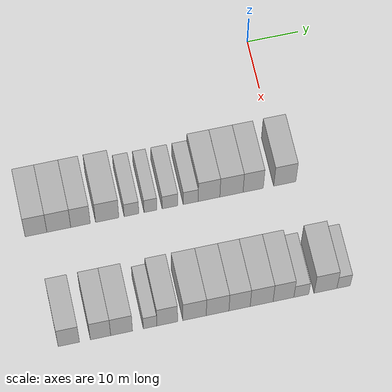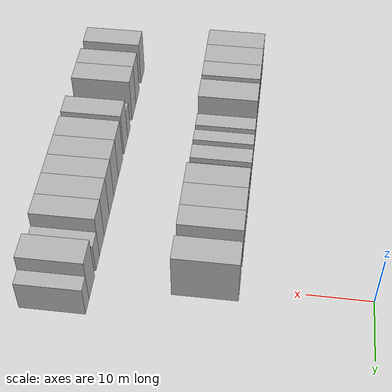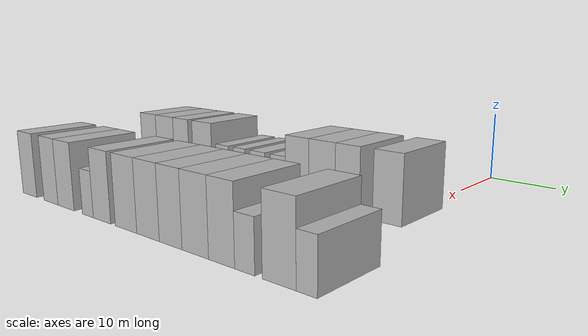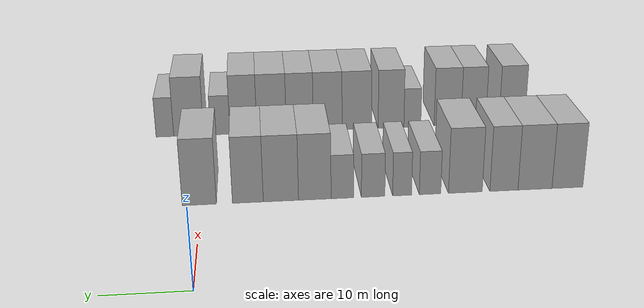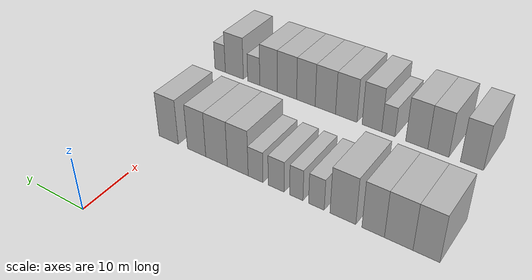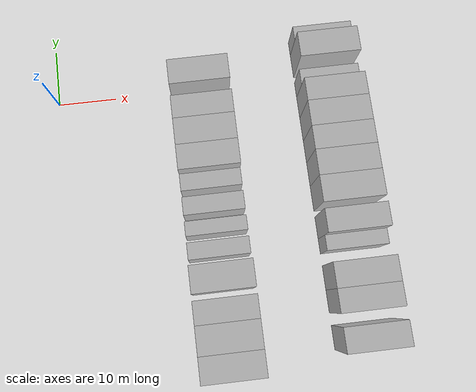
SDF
<sdf version="1.6">
 <world name="default">
  <model name="building_37">
   <static>1</static>
   <pose>25.0000 -46.9516 0 0.000000 0.000000 0.000000</pose>
   <link name="link">
    <pose>0 0 4.50 0 0 0</pose>
    <collision name="collision"><geometry><box><size>10.0000 4.0851 9.0000</size></box></geometry></collision>
    <visual name="visual">
     <cast_shadows>0</cast_shadows>
     <geometry><box><size>10.0000 4.0851 9.0000</size></box></geometry>
     <material>
      <script>
       <uri>model://HANNAS_wall/materials/scripts</uri>
       <uri>model://HANNAS_wall/materials/textures</uri>
       <name>vrc/HANNAS_wall</name>
      </script>
     </material>
    </visual>
   </link>
  </model>
  <model name="building_38">
   <static>1</static>
   <pose>25.0000 -42.6696 0 0.000000 0.000000 0.000000</pose>
   <link name="link">
    <pose>0 0 4.50 0 0 0</pose>
    <collision name="collision"><geometry><box><size>10.0000 4.4789 9.0000</size></box></geometry></collision>
    <visual name="visual">
     <cast_shadows>0</cast_shadows>
     <geometry><box><size>10.0000 4.4789 9.0000</size></box></geometry>
     <material>
      <script>
       <uri>model://HANNAS_wall/materials/scripts</uri>
       <uri>model://HANNAS_wall/materials/textures</uri>
       <name>vrc/HANNAS_wall</name>
      </script>
     </material>
    </visual>
   </link>
  </model>
  <model name="building_39">
   <static>1</static>
   <pose>25.0000 -38.5943 0 0.000000 0.000000 0.000000</pose>
   <link name="link">
    <pose>0 0 4.50 0 0 0</pose>
    <collision name="collision"><geometry><box><size>10.0000 3.6718 9.0000</size></box></geometry></collision>
    <visual name="visual">
     <cast_shadows>0</cast_shadows>
     <geometry><box><size>10.0000 3.6718 9.0000</size></box></geometry>
     <material>
      <script>
       <uri>model://HANNAS_wall/materials/scripts</uri>
       <uri>model://HANNAS_wall/materials/textures</uri>
       <name>vrc/HANNAS_wall</name>
      </script>
     </material>
    </visual>
   </link>
  </model>
  <model name="building_40">
   <static>1</static>
   <pose>25.0000 -33.5643 0 0.000000 0.000000 0.000000</pose>
   <link name="link">
    <pose>0 0 4.50 0 0 0</pose>
    <collision name="collision"><geometry><box><size>10.0000 4.3882 9.0000</size></box></geometry></collision>
    <visual name="visual">
     <cast_shadows>0</cast_shadows>
     <geometry><box><size>10.0000 4.3882 9.0000</size></box></geometry>
     <material>
      <script>
       <uri>model://HANNAS_wall/materials/scripts</uri>
       <uri>model://HANNAS_wall/materials/textures</uri>
       <name>vrc/HANNAS_wall</name>
      </script>
     </material>
    </visual>
   </link>
  </model>
  <model name="building_41">
   <static>1</static>
   <pose>25.0000 -28.9870 0 0.000000 0.000000 0.000000</pose>
   <link name="link">
    <pose>0 0 3.00 0 0 0</pose>
    <collision name="collision"><geometry><box><size>10.0000 2.7664 6.0000</size></box></geometry></collision>
    <visual name="visual">
     <cast_shadows>0</cast_shadows>
     <geometry><box><size>10.0000 2.7664 6.0000</size></box></geometry>
     <material>
      <script>
       <uri>model://HANNAS_wall/materials/scripts</uri>
       <uri>model://HANNAS_wall/materials/textures</uri>
       <name>vrc/HANNAS_wall</name>
      </script>
     </material>
    </visual>
   </link>
  </model>
  <model name="building_42">
   <static>1</static>
   <pose>25.0000 -25.3923 0 0.000000 0.000000 0.000000</pose>
   <link name="link">
    <pose>0 0 3.00 0 0 0</pose>
    <collision name="collision"><geometry><box><size>10.0000 2.4228 6.0000</size></box></geometry></collision>
    <visual name="visual">
     <cast_shadows>0</cast_shadows>
     <geometry><box><size>10.0000 2.4228 6.0000</size></box></geometry>
     <material>
      <script>
       <uri>model://HANNAS_wall/materials/scripts</uri>
       <uri>model://HANNAS_wall/materials/textures</uri>
       <name>vrc/HANNAS_wall</name>
      </script>
     </material>
    </visual>
   </link>
  </model>
  <model name="building_43">
   <static>1</static>
   <pose>25.0000 -21.6845 0 0.000000 0.000000 0.000000</pose>
   <link name="link">
    <pose>0 0 3.00 0 0 0</pose>
    <collision name="collision"><geometry><box><size>10.0000 2.9929 6.0000</size></box></geometry></collision>
    <visual name="visual">
     <cast_shadows>0</cast_shadows>
     <geometry><box><size>10.0000 2.9929 6.0000</size></box></geometry>
     <material>
      <script>
       <uri>model://HANNAS_wall/materials/scripts</uri>
       <uri>model://HANNAS_wall/materials/textures</uri>
       <name>vrc/HANNAS_wall</name>
      </script>
     </material>
    </visual>
   </link>
  </model>
  <model name="building_44">
   <static>1</static>
   <pose>25.0000 -17.7682 0 0.000000 0.000000 0.000000</pose>
   <link name="link">
    <pose>0 0 3.00 0 0 0</pose>
    <collision name="collision"><geometry><box><size>10.0000 2.8396 6.0000</size></box></geometry></collision>
    <visual name="visual">
     <cast_shadows>0</cast_shadows>
     <geometry><box><size>10.0000 2.8396 6.0000</size></box></geometry>
     <material>
      <script>
       <uri>model://HANNAS_wall/materials/scripts</uri>
       <uri>model://HANNAS_wall/materials/textures</uri>
       <name>vrc/HANNAS_wall</name>
      </script>
     </material>
    </visual>
   </link>
  </model>
  <model name="building_45">
   <static>1</static>
   <pose>25.0000 -14.2849 0 0.000000 0.000000 0.000000</pose>
   <link name="link">
    <pose>0 0 4.50 0 0 0</pose>
    <collision name="collision"><geometry><box><size>10.0000 4.1270 9.0000</size></box></geometry></collision>
    <visual name="visual">
     <cast_shadows>0</cast_shadows>
     <geometry><box><size>10.0000 4.1270 9.0000</size></box></geometry>
     <material>
      <script>
       <uri>model://HANNAS_wall/materials/scripts</uri>
       <uri>model://HANNAS_wall/materials/textures</uri>
       <name>vrc/HANNAS_wall</name>
      </script>
     </material>
    </visual>
   </link>
  </model>
  <model name="building_46">
   <static>1</static>
   <pose>25.0000 -10.0117 0 0.000000 0.000000 0.000000</pose>
   <link name="link">
    <pose>0 0 4.50 0 0 0</pose>
    <collision name="collision"><geometry><box><size>10.0000 4.4192 9.0000</size></box></geometry></collision>
    <visual name="visual">
     <cast_shadows>0</cast_shadows>
     <geometry><box><size>10.0000 4.4192 9.0000</size></box></geometry>
     <material>
      <script>
       <uri>model://HANNAS_wall/materials/scripts</uri>
       <uri>model://HANNAS_wall/materials/textures</uri>
       <name>vrc/HANNAS_wall</name>
      </script>
     </material>
    </visual>
   </link>
  </model>
  <model name="building_47">
   <static>1</static>
   <pose>25.0000 -5.8763 0 0.000000 0.000000 0.000000</pose>
   <link name="link">
    <pose>0 0 4.50 0 0 0</pose>
    <collision name="collision"><geometry><box><size>10.0000 3.8517 9.0000</size></box></geometry></collision>
    <visual name="visual">
     <cast_shadows>0</cast_shadows>
     <geometry><box><size>10.0000 3.8517 9.0000</size></box></geometry>
     <material>
      <script>
       <uri>model://HANNAS_wall/materials/scripts</uri>
       <uri>model://HANNAS_wall/materials/textures</uri>
       <name>vrc/HANNAS_wall</name>
      </script>
     </material>
    </visual>
   </link>
  </model>
  <model name="building_48">
   <static>1</static>
   <pose>25.0000 0.1629 0 0.000000 0.000000 0.000000</pose>
   <link name="link">
    <pose>0 0 4.50 0 0 0</pose>
    <collision name="collision"><geometry><box><size>10.0000 4.2267 9.0000</size></box></geometry></collision>
    <visual name="visual">
     <cast_shadows>0</cast_shadows>
     <geometry><box><size>10.0000 4.2267 9.0000</size></box></geometry>
     <material>
      <script>
       <uri>model://HANNAS_wall/materials/scripts</uri>
       <uri>model://HANNAS_wall/materials/textures</uri>
       <name>vrc/HANNAS_wall</name>
      </script>
     </material>
    </visual>
   </link>
  </model>
  <model name="building_137">
   <static>1</static>
   <pose>47.0000 -45.1108 0 0.000000 0.000000 0.000000</pose>
   <link name="link">
    <pose>0 0 4.50 0 0 0</pose>
    <collision name="collision"><geometry><box><size>10.0000 3.9173 9.0000</size></box></geometry></collision>
    <visual name="visual">
     <cast_shadows>0</cast_shadows>
     <geometry><box><size>10.0000 3.9173 9.0000</size></box></geometry>
     <material>
      <script>
       <uri>model://HANNAS_wall/materials/scripts</uri>
       <uri>model://HANNAS_wall/materials/textures</uri>
       <name>vrc/HANNAS_wall</name>
      </script>
     </material>
    </visual>
   </link>
  </model>
  <model name="building_138">
   <static>1</static>
   <pose>47.0000 -39.2840 0 0.000000 0.000000 0.000000</pose>
   <link name="link">
    <pose>0 0 4.50 0 0 0</pose>
    <collision name="collision"><geometry><box><size>10.0000 3.7363 9.0000</size></box></geometry></collision>
    <visual name="visual">
     <cast_shadows>0</cast_shadows>
     <geometry><box><size>10.0000 3.7363 9.0000</size></box></geometry>
     <material>
      <script>
       <uri>model://HANNAS_wall/materials/scripts</uri>
       <uri>model://HANNAS_wall/materials/textures</uri>
       <name>vrc/HANNAS_wall</name>
      </script>
     </material>
    </visual>
   </link>
  </model>
  <model name="building_139">
   <static>1</static>
   <pose>47.0000 -35.4017 0 0.000000 0.000000 0.000000</pose>
   <link name="link">
    <pose>0 0 4.50 0 0 0</pose>
    <collision name="collision"><geometry><box><size>10.0000 4.0281 9.0000</size></box></geometry></collision>
    <visual name="visual">
     <cast_shadows>0</cast_shadows>
     <geometry><box><size>10.0000 4.0281 9.0000</size></box></geometry>
     <material>
      <script>
       <uri>model://HANNAS_wall/materials/scripts</uri>
       <uri>model://HANNAS_wall/materials/textures</uri>
       <name>vrc/HANNAS_wall</name>
      </script>
     </material>
    </visual>
   </link>
  </model>
  <model name="building_140">
   <static>1</static>
   <pose>47.0000 -30.1337 0 0.000000 0.000000 0.000000</pose>
   <link name="link">
    <pose>0 0 3.00 0 0 0</pose>
    <collision name="collision"><geometry><box><size>10.0000 2.5078 6.0000</size></box></geometry></collision>
    <visual name="visual">
     <cast_shadows>0</cast_shadows>
     <geometry><box><size>10.0000 2.5078 6.0000</size></box></geometry>
     <material>
      <script>
       <uri>model://HANNAS_wall/materials/scripts</uri>
       <uri>model://HANNAS_wall/materials/textures</uri>
       <name>vrc/HANNAS_wall</name>
      </script>
     </material>
    </visual>
   </link>
  </model>
  <model name="building_141">
   <static>1</static>
   <pose>47.0000 -26.9715 0 0.000000 0.000000 0.000000</pose>
   <link name="link">
    <pose>0 0 4.50 0 0 0</pose>
    <collision name="collision"><geometry><box><size>10.0000 3.8167 9.0000</size></box></geometry></collision>
    <visual name="visual">
     <cast_shadows>0</cast_shadows>
     <geometry><box><size>10.0000 3.8167 9.0000</size></box></geometry>
     <material>
      <script>
       <uri>model://HANNAS_wall/materials/scripts</uri>
       <uri>model://HANNAS_wall/materials/textures</uri>
       <name>vrc/HANNAS_wall</name>
      </script>
     </material>
    </visual>
   </link>
  </model>
  <model name="building_142">
   <static>1</static>
   <pose>47.0000 -21.9004 0 0.000000 0.000000 0.000000</pose>
   <link name="link">
    <pose>0 0 4.50 0 0 0</pose>
    <collision name="collision"><geometry><box><size>10.0000 4.3256 9.0000</size></box></geometry></collision>
    <visual name="visual">
     <cast_shadows>0</cast_shadows>
     <geometry><box><size>10.0000 4.3256 9.0000</size></box></geometry>
     <material>
      <script>
       <uri>model://HANNAS_wall/materials/scripts</uri>
       <uri>model://HANNAS_wall/materials/textures</uri>
       <name>vrc/HANNAS_wall</name>
      </script>
     </material>
    </visual>
   </link>
  </model>
  <model name="building_143">
   <static>1</static>
   <pose>47.0000 -17.6285 0 0.000000 0.000000 0.000000</pose>
   <link name="link">
    <pose>0 0 4.50 0 0 0</pose>
    <collision name="collision"><geometry><box><size>10.0000 4.2182 9.0000</size></box></geometry></collision>
    <visual name="visual">
     <cast_shadows>0</cast_shadows>
     <geometry><box><size>10.0000 4.2182 9.0000</size></box></geometry>
     <material>
      <script>
       <uri>model://HANNAS_wall/materials/scripts</uri>
       <uri>model://HANNAS_wall/materials/textures</uri>
       <name>vrc/HANNAS_wall</name>
      </script>
     </material>
    </visual>
   </link>
  </model>
  <model name="building_144">
   <static>1</static>
   <pose>47.0000 -13.5398 0 0.000000 0.000000 0.000000</pose>
   <link name="link">
    <pose>0 0 4.50 0 0 0</pose>
    <collision name="collision"><geometry><box><size>10.0000 3.9590 9.0000</size></box></geometry></collision>
    <visual name="visual">
     <cast_shadows>0</cast_shadows>
     <geometry><box><size>10.0000 3.9590 9.0000</size></box></geometry>
     <material>
      <script>
       <uri>model://HANNAS_wall/materials/scripts</uri>
       <uri>model://HANNAS_wall/materials/textures</uri>
       <name>vrc/HANNAS_wall</name>
      </script>
     </material>
    </visual>
   </link>
  </model>
  <model name="building_145">
   <static>1</static>
   <pose>47.0000 -9.4246 0 0.000000 0.000000 0.000000</pose>
   <link name="link">
    <pose>0 0 4.50 0 0 0</pose>
    <collision name="collision"><geometry><box><size>10.0000 4.2713 9.0000</size></box></geometry></collision>
    <visual name="visual">
     <cast_shadows>0</cast_shadows>
     <geometry><box><size>10.0000 4.2713 9.0000</size></box></geometry>
     <material>
      <script>
       <uri>model://HANNAS_wall/materials/scripts</uri>
       <uri>model://HANNAS_wall/materials/textures</uri>
       <name>vrc/HANNAS_wall</name>
      </script>
     </material>
    </visual>
   </link>
  </model>
  <model name="building_146">
   <static>1</static>
   <pose>47.0000 -5.3444 0 0.000000 0.000000 0.000000</pose>
   <link name="link">
    <pose>0 0 4.50 0 0 0</pose>
    <collision name="collision"><geometry><box><size>10.0000 3.8891 9.0000</size></box></geometry></collision>
    <visual name="visual">
     <cast_shadows>0</cast_shadows>
     <geometry><box><size>10.0000 3.8891 9.0000</size></box></geometry>
     <material>
      <script>
       <uri>model://HANNAS_wall/materials/scripts</uri>
       <uri>model://HANNAS_wall/materials/textures</uri>
       <name>vrc/HANNAS_wall</name>
      </script>
     </material>
    </visual>
   </link>
  </model>
  <model name="building_147">
   <static>1</static>
   <pose>47.0000 -2.0068 0 0.000000 0.000000 0.000000</pose>
   <link name="link">
    <pose>0 0 3.00 0 0 0</pose>
    <collision name="collision"><geometry><box><size>10.0000 2.7861 6.0000</size></box></geometry></collision>
    <visual name="visual">
     <cast_shadows>0</cast_shadows>
     <geometry><box><size>10.0000 2.7861 6.0000</size></box></geometry>
     <material>
      <script>
       <uri>model://HANNAS_wall/materials/scripts</uri>
       <uri>model://HANNAS_wall/materials/textures</uri>
       <name>vrc/HANNAS_wall</name>
      </script>
     </material>
    </visual>
   </link>
  </model>
  <model name="building_148">
   <static>1</static>
   <pose>47.0000 2.5251 0 0.000000 0.000000 0.000000</pose>
   <link name="link">
    <pose>0 0 4.50 0 0 0</pose>
    <collision name="collision"><geometry><box><size>10.0000 4.2778 9.0000</size></box></geometry></collision>
    <visual name="visual">
     <cast_shadows>0</cast_shadows>
     <geometry><box><size>10.0000 4.2778 9.0000</size></box></geometry>
     <material>
      <script>
       <uri>model://HANNAS_wall/materials/scripts</uri>
       <uri>model://HANNAS_wall/materials/textures</uri>
       <name>vrc/HANNAS_wall</name>
      </script>
     </material>
    </visual>
   </link>
  </model>
  <model name="building_149">
   <static>1</static>
   <pose>47.0000 5.9220 0 0.000000 0.000000 0.000000</pose>
   <link name="link">
    <pose>0 0 3.00 0 0 0</pose>
    <collision name="collision"><geometry><box><size>10.0000 2.5159 6.0000</size></box></geometry></collision>
    <visual name="visual">
     <cast_shadows>0</cast_shadows>
     <geometry><box><size>10.0000 2.5159 6.0000</size></box></geometry>
     <material>
      <script>
       <uri>model://HANNAS_wall/materials/scripts</uri>
       <uri>model://HANNAS_wall/materials/textures</uri>
       <name>vrc/HANNAS_wall</name>
      </script>
     </material>
    </visual>
   </link>
  </model>
 </world>
</sdf>
